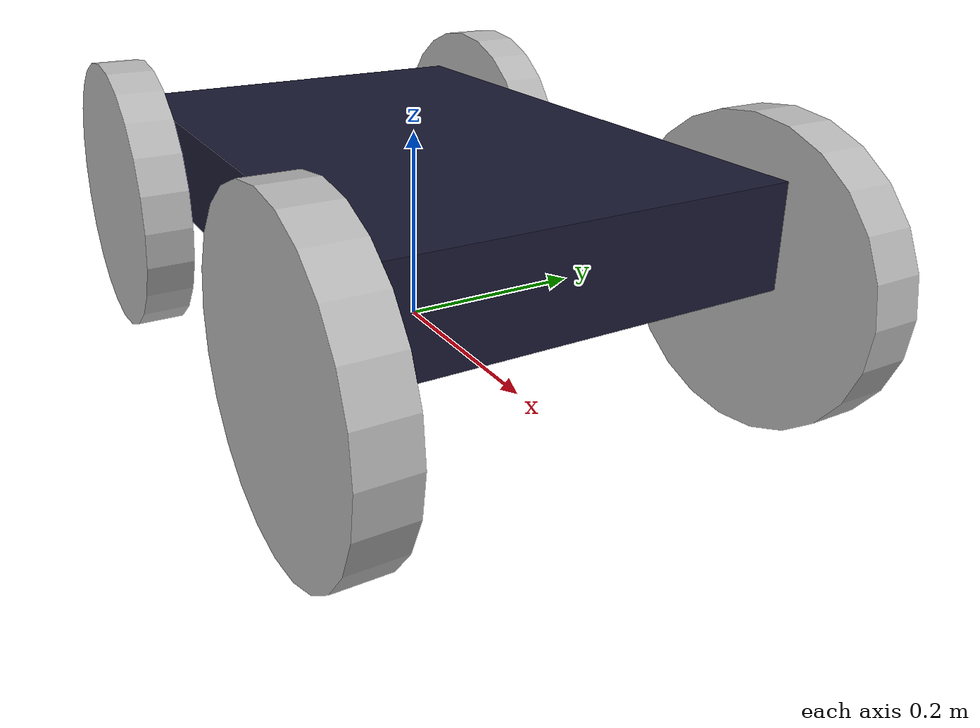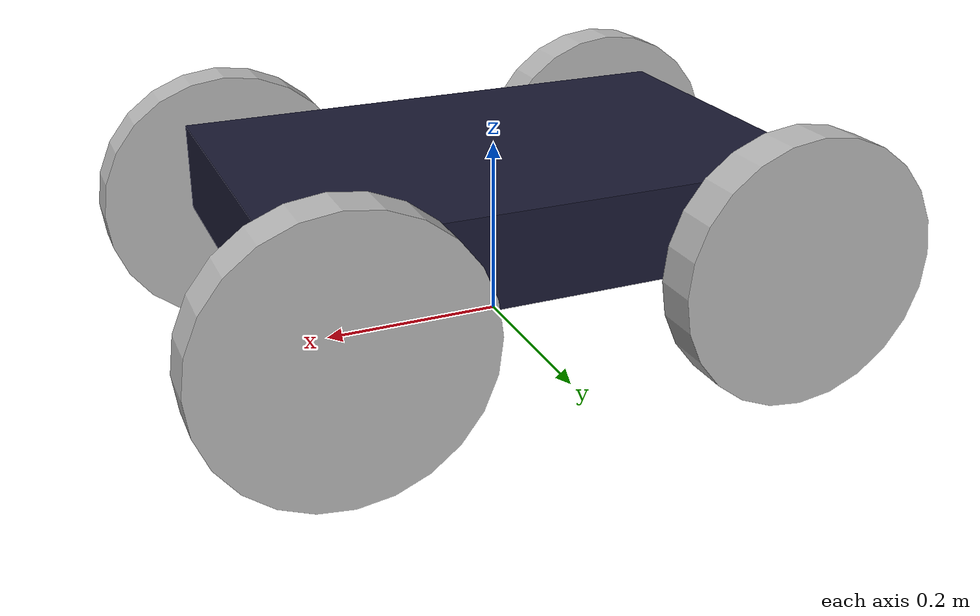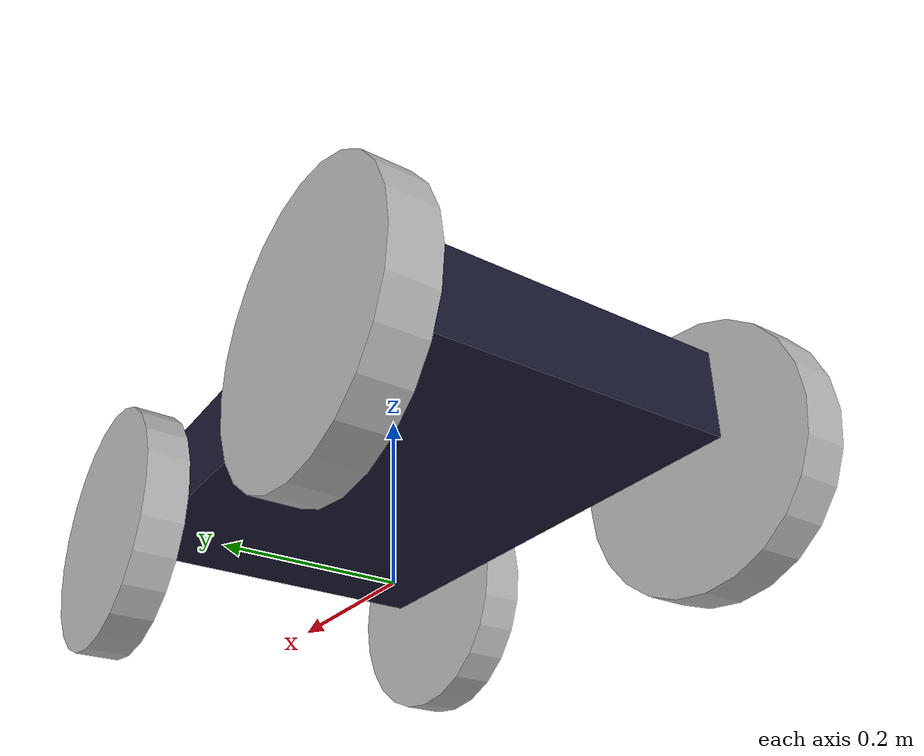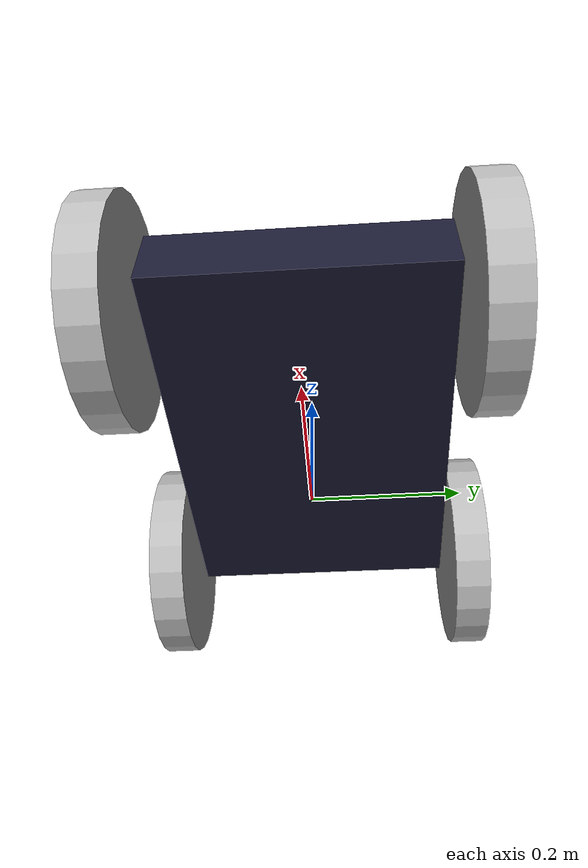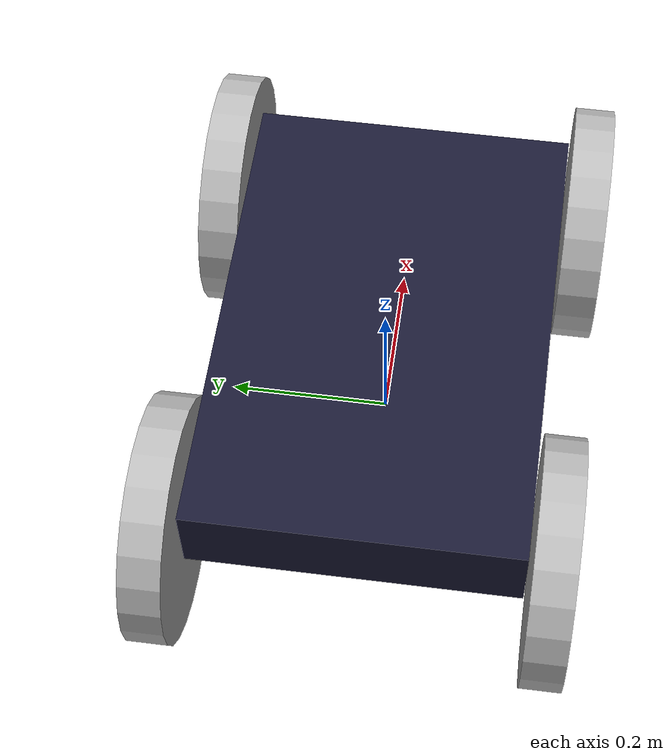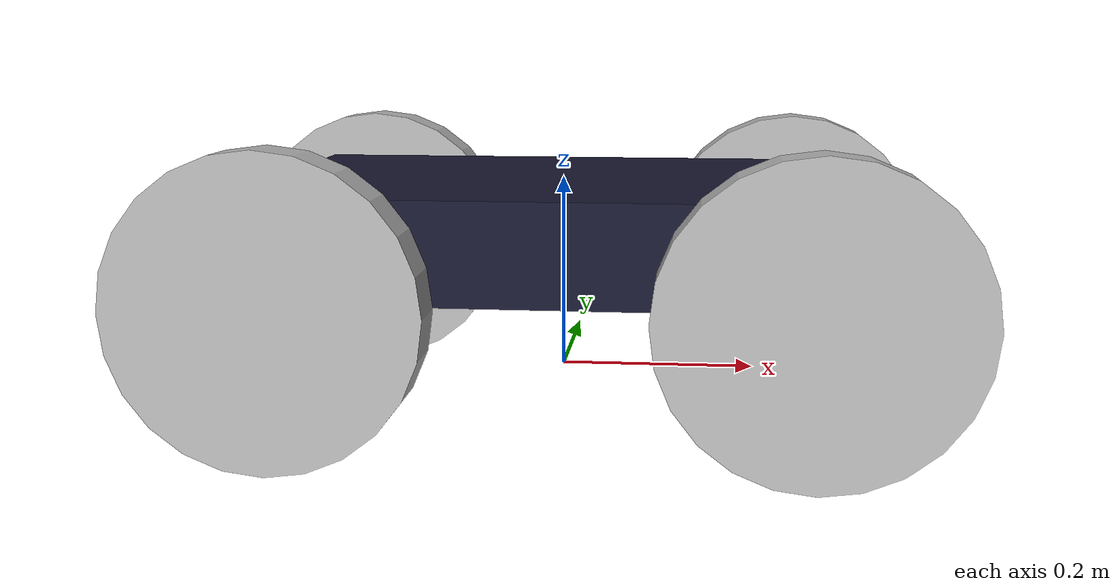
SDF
<?xml version='1.0'?>
<sdf version="1.7">
    <model name='fw_robot'>
        <!-- Robot Chassis -->
        <link name='chassis'>
            <pose>0 0 0.15 0 0 0</pose>
            <static>true</static>
            <inertial>
                <mass>25</mass>
            </inertial>

            <collision name='collision'>
                <geometry>
                    <box>
                        <size> 0.6 0.40 0.1 </size>
                    </box>
                </geometry>
            </collision>

            <visual name='visual'>
                <geometry>
                    <box>
                        <size> 0.6 0.40 0.1 </size>
                    </box>
                </geometry>
                <material>
                    <ambient>0.1 0.1 0.1 1</ambient>
                    <diffuse>0.1 0.1 0.2 1</diffuse>
                    <specular>0 0 0 0</specular>
                    <emissive>0 0 0 1</emissive>
                </material>
            </visual>
        </link>

        <!-- Front Left Wheel -->
        <link name='f_left_wheel'>
            <pose>0.25 0.23 0.1 0 1.5707 1.5707</pose>
            <collision name='flw_collision'>
                <geometry>
                    <cylinder>
                        <radius>0.15</radius>
                        <length>0.05</length>
                    </cylinder>
                </geometry>
                <friction>
                    <ode>
                        <mu>1.0</mu>
                        <mu2>1.0</mu2>
                        <slip1>0.0</slip1>
                        <slip2>0.0</slip2>
                    </ode>
                </friction>
            </collision>
            <visual name='flw_visual'>
                <geometry>
                    <cylinder>
                        <radius>0.15</radius>
                        <length>0.05</length>
                    </cylinder>
                </geometry>
                <material></material>
            </visual>
        </link>
        <joint type='revolute' name='f_left_wheel_hinge'>
            <pose> 0 0 -0.03 0 0 0 </pose>
            <child>f_left_wheel</child>
            <parent>chassis</parent>
            <axis>
                <xyz>0 0 1</xyz>
            </axis>
            <dynamics>
                <friction>100.0</friction>
                <spring_stiffness>0.1</spring_stiffness>
            </dynamics>
            <limit>
                <effort>0.01</effort>
                <velocity>0.005</velocity>
            </limit>
        </joint>

        <!-- Front Right Wheel -->
        <link name='f_right_wheel'>
            <pose>0.25 -0.23 0.1 0 1.5707 1.5707</pose>
            <collision name='frw_collision'>
                <geometry>
                    <cylinder>
                        <radius>0.15</radius>
                        <length>0.05</length>
                    </cylinder>
                </geometry>

                <surface>
                    <friction>
                        <ode>
                            <mu>1.0</mu>
                            <mu2>1.0</mu2>
                            <slip1>0.0</slip1>
                            <slip2>0.0</slip2>
                        </ode>
                    </friction>
                </surface>

            </collision>
            <visual name='frw_visual'>
                <geometry>
                    <cylinder>
                        <radius>0.15</radius>
                        <length>0.05</length>
                    </cylinder>
                </geometry>
                <material></material>
            </visual>
        </link>
        <joint type='revolute' name='f_right_wheel_hinge'>
            <pose> 0 0 0.03 0 0 0 </pose>
            <child>f_right_wheel</child>
            <parent>chassis</parent>
            <axis>
                <xyz>0 0 1</xyz>
            </axis>
            <dynamics>
                <friction>100.0</friction>
                <spring_stiffness>0.1</spring_stiffness>
            </dynamics>
            <limit>
                <effort>0.01</effort>
                <velocity>0.005</velocity>
            </limit>
        </joint>

        <!-- Back Left Wheel -->
        <link name='b_left_wheel'>
            <pose>-0.25 0.23 0.1 0 1.5707 1.5707</pose>
            <collision name='blw_collision'>
                <geometry>
                    <cylinder>
                        <radius>0.15</radius>
                        <length>0.05</length>
                    </cylinder>
                </geometry>
                <friction>
                    <ode>
                        <mu>1.0</mu>
                        <mu2>1.0</mu2>
                        <slip1>0.0</slip1>
                        <slip2>0.0</slip2>
                    </ode>
                </friction>
            </collision>
            <visual name='blw_visual'>
                <geometry>
                    <cylinder>
                        <radius>0.15</radius>
                        <length>0.05</length>
                    </cylinder>
                </geometry>
                <material></material>
            </visual>
        </link>
        <joint type='revolute' name='b_left_wheel_hinge'>
            <pose> 0 0 -0.03 0 0 0 </pose>
            <child>b_left_wheel</child>
            <parent>chassis</parent>
            <axis>
                <xyz>0 0 1</xyz>
            </axis>
            <dynamics>
                <friction>100.0</friction>
                <spring_stiffness>0.1</spring_stiffness>
            </dynamics>
            <limit>
                <effort>0.01</effort>
                <velocity>0.005</velocity>
            </limit>
        </joint>

        <!-- Back Right Wheel -->
        <link name='b_right_wheel'>
            <pose>-0.25 -0.23 0.1 0 1.5707 1.5707</pose>
            <collision name='brw_collision'>
                <geometry>
                    <cylinder>
                        <radius>0.15</radius>
                        <length>0.05</length>
                    </cylinder>
                </geometry>

                <surface>
                    <friction>
                        <ode>
                            <mu>1.0</mu>
                            <mu2>1.0</mu2>
                            <slip1>0.0</slip1>
                            <slip2>0.0</slip2>
                        </ode>
                    </friction>
                </surface>

            </collision>
            <visual name='brw_visual'>
                <geometry>
                    <cylinder>
                        <radius>0.15</radius>
                        <length>0.05</length>
                    </cylinder>
                </geometry>
                <material></material>
            </visual>
        </link>
        <joint type='revolute' name='b_right_wheel_hinge'>
            <pose> 0 0 0.03 0 0 0 </pose>
            <child>b_right_wheel</child>
            <parent>chassis</parent>
            <axis>
                <xyz>0 0 1</xyz>
            </axis>
            <dynamics>
                <friction>100.0</friction>
                <spring_stiffness>0.1</spring_stiffness>
            </dynamics>
            <limit>
                <effort>0.01</effort>
                <velocity>0.005</velocity>
            </limit>
        </joint>
    </model>
</sdf>
